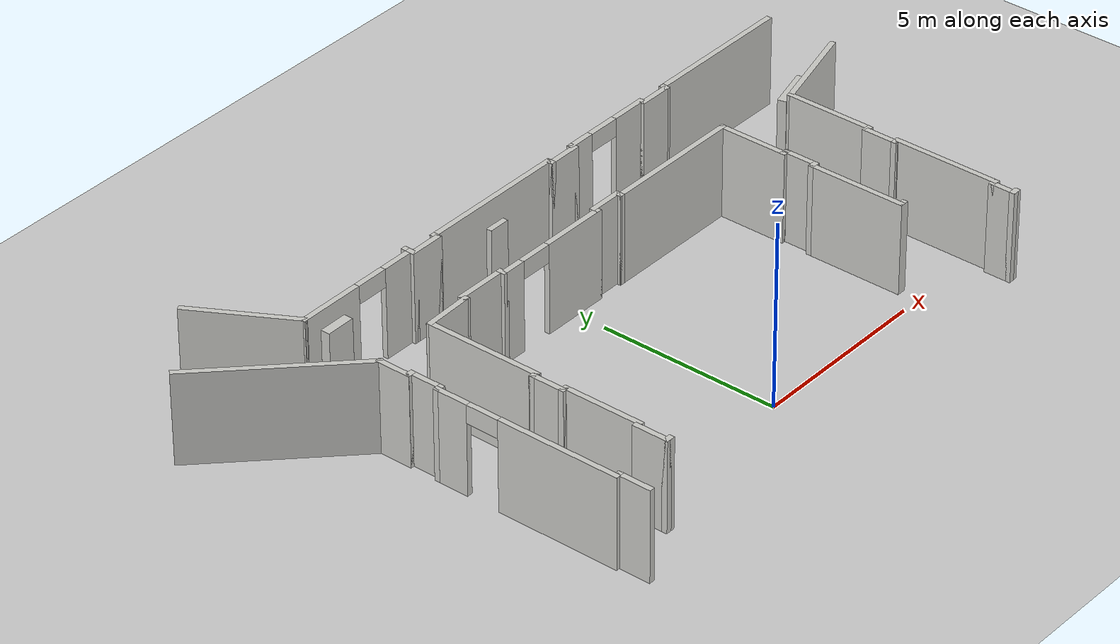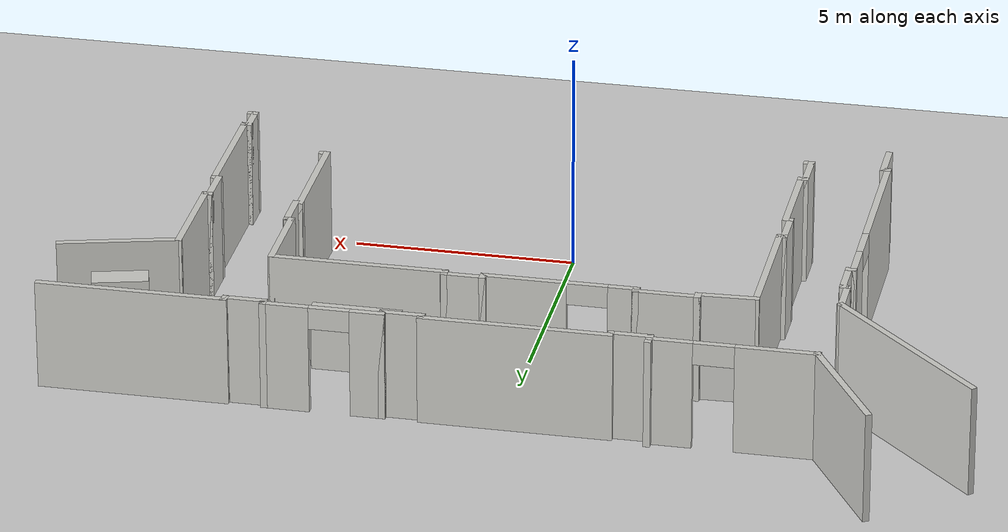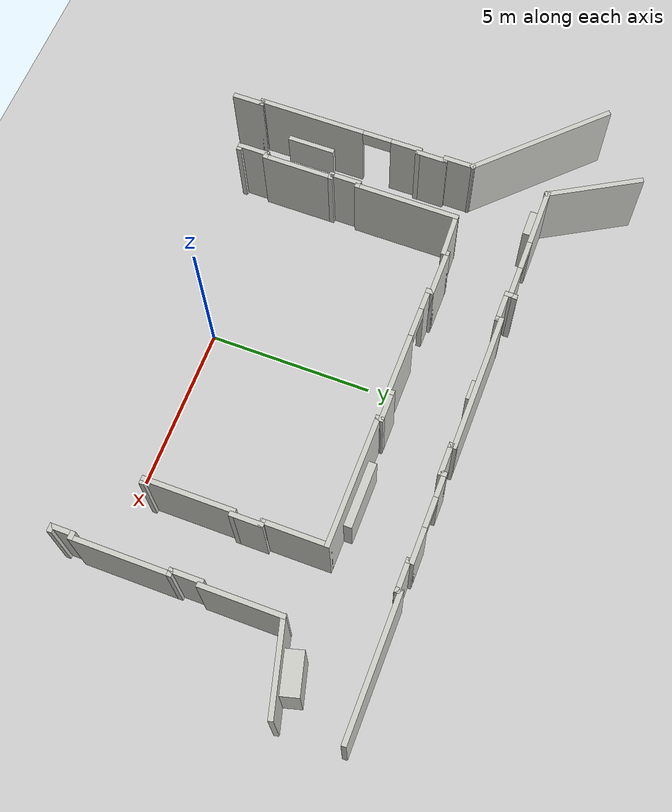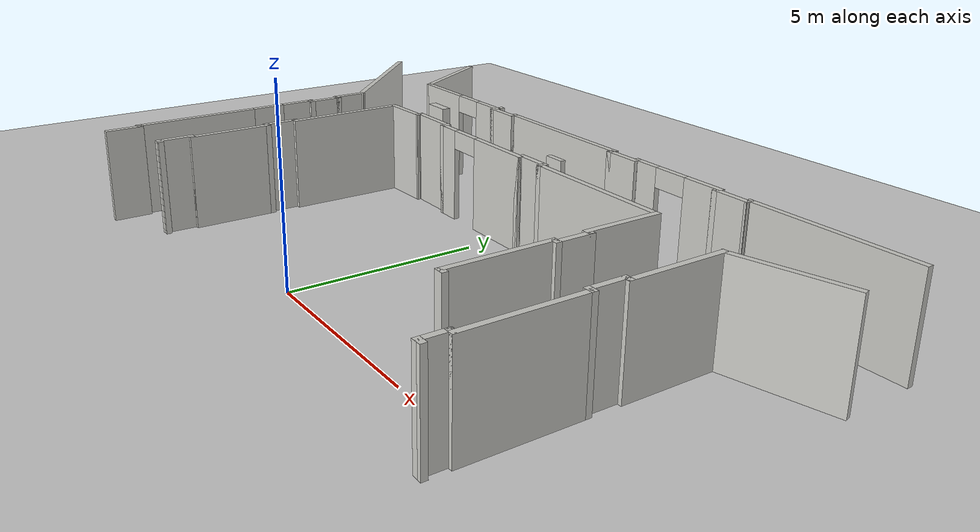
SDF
<sdf version="1.6">
 <world name="default">
  <model name="ground_plane">
   <static>1</static>
   <link name="link">
    <collision name="collision">
     <geometry><plane><normal>0 0 1</normal><size>100 100</size></plane></geometry>
     <surface><friction><ode><mu>100</mu><mu2>50</mu2></ode></friction></surface>
    </collision>
    <visual name="visual">
     <cast_shadows>0</cast_shadows>
     <geometry><plane><normal>0 0 1</normal><size>100 100</size></plane></geometry>
     <material>
      <script><uri>file://media/materials/scripts/gazebo.material</uri><name>Gazebo/Grey</name></script>
     </material>
    </visual>
   </link>
  </model>
  <model name="mcbryde5">
   <pose>0.000403 -0.034137 0 0 -0 0</pose>
   <link name="Wall_102">
    <collision name="Wall_102_Collision">
     <geometry><box><size>0.15 0.15 2.5</size></box></geometry>
     <pose>0 0 1.25 0 -0 0</pose>
    </collision>
    <visual name="Wall_102_Visual">
     <pose>0 0 1.25 0 -0 0</pose>
     <geometry><box><size>0.15 0.15 2.5</size></box></geometry>
     <material>
      <script><uri>file://media/materials/scripts/gazebo.material</uri><name>Gazebo/CeilingTiled</name></script>
      <ambient>1 1 1 1</ambient>
     </material>
    </visual>
    <pose>-6.94903 4.93922 0 0 -0 0</pose>
   </link>
   <link name="Wall_103">
    <collision name="Wall_103_Collision">
     <geometry><box><size>0.25 0.15 2.5</size></box></geometry>
     <pose>0 0 1.25 0 -0 0</pose>
    </collision>
    <visual name="Wall_103_Visual">
     <pose>0 0 1.25 0 -0 0</pose>
     <geometry><box><size>0.25 0.15 2.5</size></box></geometry>
     <material>
      <script><uri>file://media/materials/scripts/gazebo.material</uri><name>Gazebo/CeilingTiled</name></script>
      <ambient>1 1 1 1</ambient>
     </material>
    </visual>
    <pose>-6.89903 4.93922 0 0 -0 0</pose>
   </link>
   <link name="Wall_104">
    <collision name="Wall_104_Collision">
     <geometry><box><size>1 0.15 2.5</size></box></geometry>
     <pose>0 0 1.25 0 -0 0</pose>
    </collision>
    <visual name="Wall_104_Visual">
     <pose>0 0 1.25 0 -0 0</pose>
     <geometry><box><size>1 0.15 2.5</size></box></geometry>
     <material>
      <script><uri>file://media/materials/scripts/gazebo.material</uri><name>Gazebo/CeilingTiled</name></script>
      <ambient>1 1 1 1</ambient>
     </material>
    </visual>
    <pose>-6.84903 4.51422 0 0 0 -1.5708</pose>
   </link>
   <link name="Wall_105">
    <collision name="Wall_105_Collision">
     <geometry><box><size>0.25 0.15 2.5</size></box></geometry>
     <pose>0 0 1.25 0 -0 0</pose>
    </collision>
    <visual name="Wall_105_Visual">
     <pose>0 0 1.25 0 -0 0</pose>
     <geometry><box><size>0.25 0.15 2.5</size></box></geometry>
     <material>
      <script><uri>file://media/materials/scripts/gazebo.material</uri><name>Gazebo/CeilingTiled</name></script>
      <ambient>1 1 1 1</ambient>
     </material>
    </visual>
    <pose>-6.89903 4.08922 0 0 -0 3.14159</pose>
   </link>
   <link name="Wall_106">
    <pose>-6.94903 1.53922 0 0 0 -1.5708</pose>
    <visual name="Wall_106_Visual_0">
     <pose>-2.13764 0 1.25 0 -0 0</pose>
     <geometry><box><size>0.974722 0.15 2.5</size></box></geometry>
     <material>
      <script><uri>file://media/materials/scripts/gazebo.material</uri><name>Gazebo/CeilingTiled</name></script>
      <ambient>1 1 1 1</ambient>
     </material>
    </visual>
    <collision name="Wall_106_Collision_0">
     <geometry><box><size>0.974722 0.15 2.5</size></box></geometry>
     <pose>-2.13764 0 1.25 0 -0 0</pose>
    </collision>
    <visual name="Wall_106_Visual_1">
     <pose>0.937361 0 1.25 0 -0 0</pose>
     <geometry><box><size>3.37528 0.15 2.5</size></box></geometry>
     <material>
      <script><uri>file://media/materials/scripts/gazebo.material</uri><name>Gazebo/CeilingTiled</name></script>
      <ambient>1 1 1 1</ambient>
     </material>
    </visual>
    <collision name="Wall_106_Collision_1">
     <geometry><box><size>3.37528 0.15 2.5</size></box></geometry>
     <pose>0.937361 0 1.25 0 -0 0</pose>
    </collision>
    <visual name="Wall_106_Visual_2">
     <pose>-1.20028 0 2.25 0 -0 0</pose>
     <geometry><box><size>0.9 0.15 0.5</size></box></geometry>
     <material>
      <script><uri>file://media/materials/scripts/gazebo.material</uri><name>Gazebo/CeilingTiled</name></script>
      <ambient>1 1 1 1</ambient>
     </material>
    </visual>
    <collision name="Wall_106_Collision_2">
     <geometry><box><size>0.9 0.15 0.5</size></box></geometry>
     <pose>-1.20028 0 2.25 0 -0 0</pose>
    </collision>
    <visual name="Wall_106_Visual_3">
     <pose>0.937361 0.15 0.6 0 -0 0</pose>
     <geometry><box><size>1.5 0.15 1.2</size></box></geometry>
     <material>
      <script><uri>file://media/materials/scripts/gazebo.material</uri><name>Gazebo/CeilingTiled</name></script>
      <ambient>0.6 0.6 1 1</ambient>
     </material>
    </visual>
    <collision name="Wall_106_Collision_3">
     <geometry><box><size>1.5 0.15 1.2</size></box></geometry>
     <pose>0.937361 0.15 0.6 0 -0 0</pose>
    </collision>
   </link>
   <link name="Wall_107">
    <collision name="Wall_107_Collision">
     <geometry><box><size>0.25 0.15 2.5</size></box></geometry>
     <pose>0 0 1.25 0 -0 0</pose>
    </collision>
    <visual name="Wall_107_Visual">
     <pose>0 0 1.25 0 -0 0</pose>
     <geometry><box><size>0.25 0.15 2.5</size></box></geometry>
     <material>
      <script><uri>file://media/materials/scripts/gazebo.material</uri><name>Gazebo/CeilingTiled</name></script>
      <ambient>1 1 1 1</ambient>
     </material>
    </visual>
    <pose>-6.89903 -1.01078 0 0 -0 0</pose>
   </link>
   <link name="Wall_108">
    <collision name="Wall_108_Collision">
     <geometry><box><size>1 0.15 2.5</size></box></geometry>
     <pose>0 0 1.25 0 -0 0</pose>
    </collision>
    <visual name="Wall_108_Visual">
     <pose>0 0 1.25 0 -0 0</pose>
     <geometry><box><size>1 0.15 2.5</size></box></geometry>
     <material>
      <script><uri>file://media/materials/scripts/gazebo.material</uri><name>Gazebo/CeilingTiled</name></script>
      <ambient>1 1 1 1</ambient>
     </material>
    </visual>
    <pose>-6.84903 -1.43578 0 0 0 -1.5708</pose>
   </link>
   <link name="Wall_14">
    <collision name="Wall_14_Collision">
     <geometry><box><size>0.15 0.15 2.5</size></box></geometry>
     <pose>0 0 1.25 0 -0 0</pose>
    </collision>
    <visual name="Wall_14_Visual">
     <pose>0 0 1.25 0 -0 0</pose>
     <geometry><box><size>0.15 0.15 2.5</size></box></geometry>
     <material>
      <script><uri>file://media/materials/scripts/gazebo.material</uri><name>Gazebo/CeilingTiled</name></script>
      <ambient>1 1 1 1</ambient>
     </material>
    </visual>
    <pose>-3.20531 8.30498 0 0 -0 0</pose>
   </link>
   <link name="Wall_144">
    <collision name="Wall_144_Collision">
     <geometry><box><size>0.25 0.15 2.5</size></box></geometry>
     <pose>0 0 1.25 0 -0 0</pose>
    </collision>
    <visual name="Wall_144_Visual">
     <pose>0 0 1.25 0 -0 0</pose>
     <geometry><box><size>0.25 0.15 2.5</size></box></geometry>
     <material>
      <script><uri>file://media/materials/scripts/gazebo.material</uri><name>Gazebo/CeilingTiled</name></script>
      <ambient>1 1 1 1</ambient>
     </material>
    </visual>
    <pose>7.65453 -1.10972 0 0 -0 3.14159</pose>
   </link>
   <link name="Wall_145">
    <collision name="Wall_145_Collision">
     <geometry><box><size>0.75 0.15 2.5</size></box></geometry>
     <pose>0 0 1.25 0 -0 0</pose>
    </collision>
    <visual name="Wall_145_Visual">
     <pose>0 0 1.25 0 -0 0</pose>
     <geometry><box><size>0.75 0.15 2.5</size></box></geometry>
     <material>
      <script><uri>file://media/materials/scripts/gazebo.material</uri><name>Gazebo/CeilingTiled</name></script>
      <ambient>1 1 1 1</ambient>
     </material>
    </visual>
    <pose>7.60453 -0.809722 0 0 -0 1.5708</pose>
   </link>
   <link name="Wall_146">
    <collision name="Wall_146_Collision">
     <geometry><box><size>0.25 0.15 2.5</size></box></geometry>
     <pose>0 0 1.25 0 -0 0</pose>
    </collision>
    <visual name="Wall_146_Visual">
     <pose>0 0 1.25 0 -0 0</pose>
     <geometry><box><size>0.25 0.15 2.5</size></box></geometry>
     <material>
      <script><uri>file://media/materials/scripts/gazebo.material</uri><name>Gazebo/CeilingTiled</name></script>
      <ambient>1 1 1 1</ambient>
     </material>
    </visual>
    <pose>7.65453 -0.509722 0 0 -0 0</pose>
   </link>
   <link name="Wall_147">
    <collision name="Wall_147_Collision">
     <geometry><box><size>3 0.15 2.5</size></box></geometry>
     <pose>0 0 1.25 0 -0 0</pose>
    </collision>
    <visual name="Wall_147_Visual">
     <pose>0 0 1.25 0 -0 0</pose>
     <geometry><box><size>3 0.15 2.5</size></box></geometry>
     <material>
      <script><uri>file://media/materials/scripts/gazebo.material</uri><name>Gazebo/CeilingTiled</name></script>
      <ambient>1 1 1 1</ambient>
     </material>
    </visual>
    <pose>7.70453 0.915278 0 0 -0 1.5708</pose>
   </link>
   <link name="Wall_149">
    <collision name="Wall_149_Collision">
     <geometry><box><size>0.25 0.15 2.5</size></box></geometry>
     <pose>0 0 1.25 0 -0 0</pose>
    </collision>
    <visual name="Wall_149_Visual">
     <pose>0 0 1.25 0 -0 0</pose>
     <geometry><box><size>0.25 0.15 2.5</size></box></geometry>
     <material>
      <script><uri>file://media/materials/scripts/gazebo.material</uri><name>Gazebo/CeilingTiled</name></script>
      <ambient>1 1 1 1</ambient>
     </material>
    </visual>
    <pose>7.65453 2.34028 0 0 -0 3.14159</pose>
   </link>
   <link name="Wall_150">
    <collision name="Wall_150_Collision">
     <geometry><box><size>1 0.15 2.5</size></box></geometry>
     <pose>0 0 1.25 0 -0 0</pose>
    </collision>
    <visual name="Wall_150_Visual">
     <pose>0 0 1.25 0 -0 0</pose>
     <geometry><box><size>1 0.15 2.5</size></box></geometry>
     <material>
      <script><uri>file://media/materials/scripts/gazebo.material</uri><name>Gazebo/CeilingTiled</name></script>
      <ambient>1 1 1 1</ambient>
     </material>
    </visual>
    <pose>7.60453 2.76528 0 0 -0 1.5708</pose>
   </link>
   <link name="Wall_151">
    <collision name="Wall_151_Collision">
     <geometry><box><size>0.25 0.15 2.5</size></box></geometry>
     <pose>0 0 1.25 0 -0 0</pose>
    </collision>
    <visual name="Wall_151_Visual">
     <pose>0 0 1.25 0 -0 0</pose>
     <geometry><box><size>0.25 0.15 2.5</size></box></geometry>
     <material>
      <script><uri>file://media/materials/scripts/gazebo.material</uri><name>Gazebo/CeilingTiled</name></script>
      <ambient>1 1 1 1</ambient>
     </material>
    </visual>
    <pose>7.65453 3.19028 0 0 -0 0</pose>
   </link>
   <link name="Wall_152">
    <collision name="Wall_152_Collision">
     <geometry><box><size>2.5 0.15 2.5</size></box></geometry>
     <pose>0 0 1.25 0 -0 0</pose>
    </collision>
    <visual name="Wall_152_Visual">
     <pose>0 0 1.25 0 -0 0</pose>
     <geometry><box><size>2.5 0.15 2.5</size></box></geometry>
     <material>
      <script><uri>file://media/materials/scripts/gazebo.material</uri><name>Gazebo/CeilingTiled</name></script>
      <ambient>1 1 1 1</ambient>
     </material>
    </visual>
    <pose>7.70453 4.36528 0 0 -0 1.5708</pose>
   </link>
   <link name="Wall_153">
    <collision name="Wall_153_Collision_0">
     <geometry><box><size>2.75 0.15 2.5</size></box></geometry>
     <pose>0 0 1.25 0 -0 0</pose>
    </collision>
    <visual name="Wall_153_Visual_0">
     <pose>0 0 1.25 0 -0 0</pose>
     <geometry><box><size>2.75 0.15 2.5</size></box></geometry>
     <material>
      <script><uri>file://media/materials/scripts/gazebo.material</uri><name>Gazebo/CeilingTiled</name></script>
      <ambient>1 1 1 1</ambient>
     </material>
    </visual>
    <collision name="Wall_153_Collision_1">
     <geometry><box><size>1.25 0.55 1.8</size></box></geometry>
     <pose>0 0.35 0.9 0 -0 0</pose>
    </collision>
    <visual name="Wall_153_Visual_1">
     <pose>0 0.35 0.9 0 -0 0</pose>
     <geometry><box><size>1.25 0.55 1.8</size></box></geometry>
     <material>
      <script><uri>file://media/materials/scripts/gazebo.material</uri><name>Gazebo/CeilingTiled</name></script>
      <ambient>1 0.4 0.4 1</ambient>
     </material>
    </visual>
    <pose>8.96023 5.87674 0 0 -0 0.261799</pose>
   </link>
   <link name="Wall_19">
    <collision name="Wall_19_Collision">
     <geometry><box><size>3 0.15 2.5</size></box></geometry>
     <pose>0 0 1.25 0 -0 0</pose>
    </collision>
    <visual name="Wall_19_Visual">
     <pose>0 0 1.25 0 -0 0</pose>
     <geometry><box><size>3 0.15 2.5</size></box></geometry>
     <material>
      <script><uri>file://media/materials/scripts/gazebo.material</uri><name>Gazebo/CeilingTiled</name></script>
      <ambient>1 1 1 1</ambient>
     </material>
    </visual>
    <pose>-7.52502 9.40387 0 0 0 -1.0472</pose>
   </link>
   <link name="Wall_20">
    <pose>-5.01252 8.16978 0 0 -0 0</pose>
    <visual name="Wall_20_Visual_0">
     <pose>-0.956139 0 1.25 0 -0 0</pose>
     <geometry><box><size>1.83772 0.15 2.5</size></box></geometry>
     <material>
      <script><uri>file://media/materials/scripts/gazebo.material</uri><name>Gazebo/CeilingTiled</name></script>
      <ambient>1 1 1 1</ambient>
     </material>
    </visual>
    <collision name="Wall_20_Collision_0">
     <geometry><box><size>1.83772 0.15 2.5</size></box></geometry>
     <pose>-0.956139 0 1.25 0 -0 0</pose>
    </collision>
    <visual name="Wall_20_Visual_1">
     <pose>1.36886 0 1.25 0 -0 0</pose>
     <geometry><box><size>1.01228 0.15 2.5</size></box></geometry>
     <material>
      <script><uri>file://media/materials/scripts/gazebo.material</uri><name>Gazebo/CeilingTiled</name></script>
      <ambient>1 1 1 1</ambient>
     </material>
    </visual>
    <collision name="Wall_20_Collision_1">
     <geometry><box><size>1.01228 0.15 2.5</size></box></geometry>
     <pose>1.36886 0 1.25 0 -0 0</pose>
    </collision>
    <visual name="Wall_20_Visual_2">
     <pose>0.412722 0 2.25 0 -0 0</pose>
     <geometry><box><size>0.9 0.15 0.5</size></box></geometry>
     <material>
      <script><uri>file://media/materials/scripts/gazebo.material</uri><name>Gazebo/CeilingTiled</name></script>
      <ambient>1 1 1 1</ambient>
     </material>
    </visual>
    <collision name="Wall_20_Collision_2">
     <geometry><box><size>0.9 0.15 0.5</size></box></geometry>
     <pose>0.412722 0 2.25 0 -0 0</pose>
    </collision>
    <visual name="Wall_20_Visual_3">
     <pose>-0.956139 -0.2 1.0 0 -0 0</pose>
     <geometry><box><size>0.8 0.25 2.0</size></box></geometry>
     <material>
      <script><uri>file://media/materials/scripts/gazebo.material</uri><name>Gazebo/CeilingTiled</name></script>
      <ambient>1 1 0.2 1</ambient>
     </material>
    </visual>
    <collision name="Wall_20_Collision_3">
     <geometry><box><size>0.8 0.25 2.0</size></box></geometry>
     <pose>-0.956139 -0.2 1.0 0 -0 0</pose>
    </collision>
   </link>
   <link name="Wall_21">
    <collision name="Wall_21_Collision">
     <geometry><box><size>0.25 0.15 2.5</size></box></geometry>
     <pose>0 0 1.25 0 -0 0</pose>
    </collision>
    <visual name="Wall_21_Visual">
     <pose>0 0 1.25 0 -0 0</pose>
     <geometry><box><size>0.25 0.15 2.5</size></box></geometry>
     <material>
      <script><uri>file://media/materials/scripts/gazebo.material</uri><name>Gazebo/CeilingTiled</name></script>
      <ambient>1 1 1 1</ambient>
     </material>
    </visual>
    <pose>-3.21252 8.11978 0 0 0 -1.5708</pose>
   </link>
   <link name="Wall_22">
    <collision name="Wall_22_Collision">
     <geometry><box><size>1 0.15 2.5</size></box></geometry>
     <pose>0 0 1.25 0 -0 0</pose>
    </collision>
    <visual name="Wall_22_Visual">
     <pose>0 0 1.25 0 -0 0</pose>
     <geometry><box><size>1 0.15 2.5</size></box></geometry>
     <material>
      <script><uri>file://media/materials/scripts/gazebo.material</uri><name>Gazebo/CeilingTiled</name></script>
      <ambient>1 1 1 1</ambient>
     </material>
    </visual>
    <pose>-2.78752 8.06978 0 0 -0 0</pose>
   </link>
   <link name="Wall_23">
    <collision name="Wall_23_Collision">
     <geometry><box><size>0.25 0.15 2.5</size></box></geometry>
     <pose>0 0 1.25 0 -0 0</pose>
    </collision>
    <visual name="Wall_23_Visual">
     <pose>0 0 1.25 0 -0 0</pose>
     <geometry><box><size>0.25 0.15 2.5</size></box></geometry>
     <material>
      <script><uri>file://media/materials/scripts/gazebo.material</uri><name>Gazebo/CeilingTiled</name></script>
      <ambient>1 1 1 1</ambient>
     </material>
    </visual>
    <pose>-2.36252 8.11978 0 0 -0 1.5708</pose>
   </link>
   <link name="Wall_24">
    <collision name="Wall_24_Collision_0">
     <geometry><box><size>4.25 0.15 2.5</size></box></geometry>
     <pose>0 0 1.25 0 -0 0</pose>
    </collision>
    <visual name="Wall_24_Visual_0">
     <pose>0 0 1.25 0 -0 0</pose>
     <geometry><box><size>4.25 0.15 2.5</size></box></geometry>
     <material>
      <script><uri>file://media/materials/scripts/gazebo.material</uri><name>Gazebo/CeilingTiled</name></script>
      <ambient>1 1 1 1</ambient>
     </material>
    </visual>
    <collision name="Wall_24_Collision_1">
     <geometry><box><size>0.6 0.15 1.8</size></box></geometry>
     <pose>0 -0.15 0.9 0 -0 0</pose>
    </collision>
    <visual name="Wall_24_Visual_1">
     <pose>0 -0.15 0.9 0 -0 0</pose>
     <geometry><box><size>0.6 0.15 1.8</size></box></geometry>
     <material>
      <script><uri>file://media/materials/scripts/gazebo.material</uri><name>Gazebo/CeilingTiled</name></script>
      <ambient>0.5 1 0.8 1</ambient>
     </material>
    </visual>
    <pose>-0.312519 8.16978 0 0 -0 0</pose>
   </link>
   <link name="Wall_25">
    <collision name="Wall_25_Collision">
     <geometry><box><size>0.25 0.15 2.5</size></box></geometry>
     <pose>0 0 1.25 0 -0 0</pose>
    </collision>
    <visual name="Wall_25_Visual">
     <pose>0 0 1.25 0 -0 0</pose>
     <geometry><box><size>0.25 0.15 2.5</size></box></geometry>
     <material>
      <script><uri>file://media/materials/scripts/gazebo.material</uri><name>Gazebo/CeilingTiled</name></script>
      <ambient>1 1 1 1</ambient>
     </material>
    </visual>
    <pose>1.73748 8.11978 0 0 0 -1.5708</pose>
   </link>
   <link name="Wall_26">
    <collision name="Wall_26_Collision">
     <geometry><box><size>1 0.15 2.5</size></box></geometry>
     <pose>0 0 1.25 0 -0 0</pose>
    </collision>
    <visual name="Wall_26_Visual">
     <pose>0 0 1.25 0 -0 0</pose>
     <geometry><box><size>1 0.15 2.5</size></box></geometry>
     <material>
      <script><uri>file://media/materials/scripts/gazebo.material</uri><name>Gazebo/CeilingTiled</name></script>
      <ambient>1 1 1 1</ambient>
     </material>
    </visual>
    <pose>2.16248 8.06978 0 0 -0 0</pose>
   </link>
   <link name="Wall_27">
    <collision name="Wall_27_Collision">
     <geometry><box><size>0.25 0.15 2.5</size></box></geometry>
     <pose>0 0 1.25 0 -0 0</pose>
    </collision>
    <visual name="Wall_27_Visual">
     <pose>0 0 1.25 0 -0 0</pose>
     <geometry><box><size>0.25 0.15 2.5</size></box></geometry>
     <material>
      <script><uri>file://media/materials/scripts/gazebo.material</uri><name>Gazebo/CeilingTiled</name></script>
      <ambient>1 1 1 1</ambient>
     </material>
    </visual>
    <pose>2.58748 8.11978 0 0 -0 1.5708</pose>
   </link>
   <link name="Wall_28">
    <pose>3.88748 8.16978 0 0 -0 0</pose>
    <visual name="Wall_28_Visual_0">
     <pose>-0.988297 0 1.25 0 -0 0</pose>
     <geometry><box><size>0.773405 0.15 2.5</size></box></geometry>
     <material>
      <script><uri>file://media/materials/scripts/gazebo.material</uri><name>Gazebo/CeilingTiled</name></script>
      <ambient>1 1 1 1</ambient>
     </material>
    </visual>
    <collision name="Wall_28_Collision_0">
     <geometry><box><size>0.773405 0.15 2.5</size></box></geometry>
     <pose>-0.988297 0 1.25 0 -0 0</pose>
    </collision>
    <visual name="Wall_28_Visual_1">
     <pose>0.836703 0 1.25 0 -0 0</pose>
     <geometry><box><size>1.07659 0.15 2.5</size></box></geometry>
     <material>
      <script><uri>file://media/materials/scripts/gazebo.material</uri><name>Gazebo/CeilingTiled</name></script>
      <ambient>1 1 1 1</ambient>
     </material>
    </visual>
    <collision name="Wall_28_Collision_1">
     <geometry><box><size>1.07659 0.15 2.5</size></box></geometry>
     <pose>0.836703 0 1.25 0 -0 0</pose>
    </collision>
    <visual name="Wall_28_Visual_2">
     <pose>-0.151595 0 2.25 0 -0 0</pose>
     <geometry><box><size>0.9 0.15 0.5</size></box></geometry>
     <material>
      <script><uri>file://media/materials/scripts/gazebo.material</uri><name>Gazebo/CeilingTiled</name></script>
      <ambient>1 1 1 1</ambient>
     </material>
    </visual>
    <collision name="Wall_28_Collision_2">
     <geometry><box><size>0.9 0.15 0.5</size></box></geometry>
     <pose>-0.151595 0 2.25 0 -0 0</pose>
    </collision>
   </link>
   <link name="Wall_29">
    <collision name="Wall_29_Collision">
     <geometry><box><size>0.25 0.15 2.5</size></box></geometry>
     <pose>0 0 1.25 0 -0 0</pose>
    </collision>
    <visual name="Wall_29_Visual">
     <pose>0 0 1.25 0 -0 0</pose>
     <geometry><box><size>0.25 0.15 2.5</size></box></geometry>
     <material>
      <script><uri>file://media/materials/scripts/gazebo.material</uri><name>Gazebo/CeilingTiled</name></script>
      <ambient>1 1 1 1</ambient>
     </material>
    </visual>
    <pose>5.18748 8.11978 0 0 0 -1.5708</pose>
   </link>
   <link name="Wall_30">
    <collision name="Wall_30_Collision">
     <geometry><box><size>1 0.15 2.5</size></box></geometry>
     <pose>0 0 1.25 0 -0 0</pose>
    </collision>
    <visual name="Wall_30_Visual">
     <pose>0 0 1.25 0 -0 0</pose>
     <geometry><box><size>1 0.15 2.5</size></box></geometry>
     <material>
      <script><uri>file://media/materials/scripts/gazebo.material</uri><name>Gazebo/CeilingTiled</name></script>
      <ambient>1 1 1 1</ambient>
     </material>
    </visual>
    <pose>5.61248 8.06978 0 0 -0 0</pose>
   </link>
   <link name="Wall_31">
    <collision name="Wall_31_Collision">
     <geometry><box><size>0.227973 0.15 2.5</size></box></geometry>
     <pose>0 0 1.25 0 -0 0</pose>
    </collision>
    <visual name="Wall_31_Visual">
     <pose>0 0 1.25 0 -0 0</pose>
     <geometry><box><size>0.227973 0.15 2.5</size></box></geometry>
     <material>
      <script><uri>file://media/materials/scripts/gazebo.material</uri><name>Gazebo/CeilingTiled</name></script>
      <ambient>1 1 1 1</ambient>
     </material>
    </visual>
    <pose>6.0432 8.10835 0 0 -0 1.42361</pose>
   </link>
   <link name="Wall_32">
    <collision name="Wall_32_Collision">
     <geometry><box><size>4.25 0.15 2.5</size></box></geometry>
     <pose>0 0 1.25 0 -0 0</pose>
    </collision>
    <visual name="Wall_32_Visual">
     <pose>0 0 1.25 0 -0 0</pose>
     <geometry><box><size>4.25 0.15 2.5</size></box></geometry>
     <material>
      <script><uri>file://media/materials/scripts/gazebo.material</uri><name>Gazebo/CeilingTiled</name></script>
      <ambient>1 1 1 1</ambient>
     </material>
    </visual>
    <pose>8.09892 8.15835 0 0 -0 0</pose>
   </link>
   <link name="Wall_35">
    <collision name="Wall_35_Collision">
     <geometry><box><size>0.25 0.15 2.5</size></box></geometry>
     <pose>0 0 1.25 0 -0 0</pose>
    </collision>
    <visual name="Wall_35_Visual">
     <pose>0 0 1.25 0 -0 0</pose>
     <geometry><box><size>0.25 0.15 2.5</size></box></geometry>
     <material>
      <script><uri>file://media/materials/scripts/gazebo.material</uri><name>Gazebo/CeilingTiled</name></script>
      <ambient>1 1 1 1</ambient>
     </material>
    </visual>
    <pose>-3.86866 5.97671 0 0 -0 1.5708</pose>
   </link>
   <link name="Wall_36">
    <collision name="Wall_36_Collision">
     <geometry><box><size>1.5 0.15 2.5</size></box></geometry>
     <pose>0 0 1.25 0 -0 0</pose>
    </collision>
    <visual name="Wall_36_Visual">
     <pose>0 0 1.25 0 -0 0</pose>
     <geometry><box><size>1.5 0.15 2.5</size></box></geometry>
     <material>
      <script><uri>file://media/materials/scripts/gazebo.material</uri><name>Gazebo/CeilingTiled</name></script>
      <ambient>1 1 1 1</ambient>
     </material>
    </visual>
    <pose>-3.19366 6.02671 0 0 -0 0</pose>
   </link>
   <link name="Wall_37">
    <collision name="Wall_37_Collision">
     <geometry><box><size>0.25 0.15 2.5</size></box></geometry>
     <pose>0 0 1.25 0 -0 0</pose>
    </collision>
    <visual name="Wall_37_Visual">
     <pose>0 0 1.25 0 -0 0</pose>
     <geometry><box><size>0.25 0.15 2.5</size></box></geometry>
     <material>
      <script><uri>file://media/materials/scripts/gazebo.material</uri><name>Gazebo/CeilingTiled</name></script>
      <ambient>1 1 1 1</ambient>
     </material>
    </visual>
    <pose>-2.51866 5.97671 0 0 0 -1.5708</pose>
   </link>
   <link name="Wall_38">
    <pose>-0.843662 5.92671 0 0 -0 0</pose>
    <visual name="Wall_38_Visual_0">
     <pose>-1.40375 0 1.25 0 -0 0</pose>
     <geometry><box><size>0.692509 0.15 2.5</size></box></geometry>
     <material>
      <script><uri>file://media/materials/scripts/gazebo.material</uri><name>Gazebo/CeilingTiled</name></script>
      <ambient>1 1 1 1</ambient>
     </material>
    </visual>
    <collision name="Wall_38_Collision_0">
     <geometry><box><size>0.692509 0.15 2.5</size></box></geometry>
     <pose>-1.40375 0 1.25 0 -0 0</pose>
    </collision>
    <visual name="Wall_38_Visual_1">
     <pose>0.796255 0 1.25 0 -0 0</pose>
     <geometry><box><size>1.90749 0.15 2.5</size></box></geometry>
     <material>
      <script><uri>file://media/materials/scripts/gazebo.material</uri><name>Gazebo/CeilingTiled</name></script>
      <ambient>1 1 1 1</ambient>
     </material>
    </visual>
    <collision name="Wall_38_Collision_1">
     <geometry><box><size>1.90749 0.15 2.5</size></box></geometry>
     <pose>0.796255 0 1.25 0 -0 0</pose>
    </collision>
    <visual name="Wall_38_Visual_2">
     <pose>-0.607491 0 2.25 0 -0 0</pose>
     <geometry><box><size>0.9 0.15 0.5</size></box></geometry>
     <material>
      <script><uri>file://media/materials/scripts/gazebo.material</uri><name>Gazebo/CeilingTiled</name></script>
      <ambient>1 1 1 1</ambient>
     </material>
    </visual>
    <collision name="Wall_38_Collision_2">
     <geometry><box><size>0.9 0.15 0.5</size></box></geometry>
     <pose>-0.607491 0 2.25 0 -0 0</pose>
    </collision>
   </link>
   <link name="Wall_39">
    <collision name="Wall_39_Collision">
     <geometry><box><size>0.25 0.15 2.5</size></box></geometry>
     <pose>0 0 1.25 0 -0 0</pose>
    </collision>
    <visual name="Wall_39_Visual">
     <pose>0 0 1.25 0 -0 0</pose>
     <geometry><box><size>0.25 0.15 2.5</size></box></geometry>
     <material>
      <script><uri>file://media/materials/scripts/gazebo.material</uri><name>Gazebo/CeilingTiled</name></script>
      <ambient>1 1 1 1</ambient>
     </material>
    </visual>
    <pose>0.831338 5.97671 0 0 -0 1.5708</pose>
   </link>
   <link name="Wall_40">
    <collision name="Wall_40_Collision">
     <geometry><box><size>1 0.15 2.5</size></box></geometry>
     <pose>0 0 1.25 0 -0 0</pose>
    </collision>
    <visual name="Wall_40_Visual">
     <pose>0 0 1.25 0 -0 0</pose>
     <geometry><box><size>1 0.15 2.5</size></box></geometry>
     <material>
      <script><uri>file://media/materials/scripts/gazebo.material</uri><name>Gazebo/CeilingTiled</name></script>
      <ambient>1 1 1 1</ambient>
     </material>
    </visual>
    <pose>1.25634 6.02671 0 0 -0 0</pose>
   </link>
   <link name="Wall_41">
    <collision name="Wall_41_Collision">
     <geometry><box><size>0.25 0.15 2.5</size></box></geometry>
     <pose>0 0 1.25 0 -0 0</pose>
    </collision>
    <visual name="Wall_41_Visual">
     <pose>0 0 1.25 0 -0 0</pose>
     <geometry><box><size>0.25 0.15 2.5</size></box></geometry>
     <material>
      <script><uri>file://media/materials/scripts/gazebo.material</uri><name>Gazebo/CeilingTiled</name></script>
      <ambient>1 1 1 1</ambient>
     </material>
    </visual>
    <pose>1.68134 5.97671 0 0 0 -1.5708</pose>
   </link>
   <link name="Wall_42">
    <collision name="Wall_42_Collision_0">
     <geometry><box><size>4 0.15 2.5</size></box></geometry>
     <pose>0 0 1.25 0 -0 0</pose>
    </collision>
    <visual name="Wall_42_Visual_0">
     <pose>0 0 1.25 0 -0 0</pose>
     <geometry><box><size>4 0.15 2.5</size></box></geometry>
     <material>
      <script><uri>file://media/materials/scripts/gazebo.material</uri><name>Gazebo/CeilingTiled</name></script>
      <ambient>1 1 1 1</ambient>
     </material>
    </visual>
    <collision name="Wall_42_Collision_1">
     <geometry><box><size>2 0.25 1.5</size></box></geometry>
     <pose>0 0.2 0.75 0 -0 0</pose>
    </collision>
    <visual name="Wall_42_Visual_1">
     <pose>0 0.2 0.75 0 -0 0</pose>
     <geometry><box><size>2 0.25 1.5</size></box></geometry>
     <material>
      <script><uri>file://media/materials/scripts/gazebo.material</uri><name>Gazebo/CeilingTiled</name></script>
      <ambient>1 1 0.8 1</ambient>
     </material>
    </visual>
    <pose>3.60634 5.92671 0 0 -0 0</pose>
   </link>
   <link name="Wall_44">
    <collision name="Wall_44_Collision">
     <geometry><box><size>2 0.15 2.5</size></box></geometry>
     <pose>0 0.2 1.25 0 -0 0</pose>
    </collision>
    <visual name="Wall_44_Visual">
     <pose>0 0 1.25 0 -0 0</pose>
     <geometry><box><size>2 0.15 2.5</size></box></geometry>
     <material>
      <script><uri>file://media/materials/scripts/gazebo.material</uri><name>Gazebo/CeilingTiled</name></script>
      <ambient>1 1 1 1</ambient>
     </material>
    </visual>
    <pose>5.53134 5.00171 0 0 0 -1.5708</pose>
   </link>
   <link name="Wall_45">
    <collision name="Wall_45_Collision">
     <geometry><box><size>0.25 0.15 2.5</size></box></geometry>
     <pose>0 0 1.25 0 -0 0</pose>
    </collision>
    <visual name="Wall_45_Visual">
     <pose>0 0 1.25 0 -0 0</pose>
     <geometry><box><size>0.25 0.15 2.5</size></box></geometry>
     <material>
      <script><uri>file://media/materials/scripts/gazebo.material</uri><name>Gazebo/CeilingTiled</name></script>
      <ambient>1 1 1 1</ambient>
     </material>
    </visual>
    <pose>5.58134 4.07671 0 0 -0 0</pose>
   </link>
   <link name="Wall_46">
    <collision name="Wall_46_Collision">
     <geometry><box><size>1 0.15 2.5</size></box></geometry>
     <pose>0 0 1.25 0 -0 0</pose>
    </collision>
    <visual name="Wall_46_Visual">
     <pose>0 0 1.25 0 -0 0</pose>
     <geometry><box><size>1 0.15 2.5</size></box></geometry>
     <material>
      <script><uri>file://media/materials/scripts/gazebo.material</uri><name>Gazebo/CeilingTiled</name></script>
      <ambient>1 1 1 1</ambient>
     </material>
    </visual>
    <pose>5.63134 3.65171 0 0 0 -1.5708</pose>
   </link>
   <link name="Wall_47">
    <collision name="Wall_47_Collision">
     <geometry><box><size>0.25 0.15 2.5</size></box></geometry>
     <pose>0 0 1.25 0 -0 0</pose>
    </collision>
    <visual name="Wall_47_Visual">
     <pose>0 0 1.25 0 -0 0</pose>
     <geometry><box><size>0.25 0.15 2.5</size></box></geometry>
     <material>
      <script><uri>file://media/materials/scripts/gazebo.material</uri><name>Gazebo/CeilingTiled</name></script>
      <ambient>1 1 1 1</ambient>
     </material>
    </visual>
    <pose>5.58134 3.22671 0 0 -0 3.14159</pose>
   </link>
   <link name="Wall_48">
    <collision name="Wall_48_Collision">
     <geometry><box><size>2.75 0.15 2.5</size></box></geometry>
     <pose>0 0 1.25 0 -0 0</pose>
    </collision>
    <visual name="Wall_48_Visual">
     <pose>0 0 1.25 0 -0 0</pose>
     <geometry><box><size>2.75 0.15 2.5</size></box></geometry>
     <material>
      <script><uri>file://media/materials/scripts/gazebo.material</uri><name>Gazebo/CeilingTiled</name></script>
      <ambient>1 1 1 1</ambient>
     </material>
    </visual>
    <pose>5.53134 1.92671 0 0 0 -1.5708</pose>
   </link>
   <link name="Wall_52">
    <collision name="Wall_52_Collision">
     <geometry><box><size>0.25 0.15 2.5</size></box></geometry>
     <pose>0 0 1.25 0 -0 0</pose>
    </collision>
    <visual name="Wall_52_Visual">
     <pose>0 0 1.25 0 -0 0</pose>
     <geometry><box><size>0.25 0.15 2.5</size></box></geometry>
     <material>
      <script><uri>file://media/materials/scripts/gazebo.material</uri><name>Gazebo/CeilingTiled</name></script>
      <ambient>1 1 1 1</ambient>
     </material>
    </visual>
    <pose>5.58134 0.626707 0 0 -0 0</pose>
   </link>
   <link name="Wall_82">
    <collision name="Wall_82_Collision">
     <geometry><box><size>0.25 0.15 2.5</size></box></geometry>
     <pose>0 0 1.25 0 -0 0</pose>
    </collision>
    <visual name="Wall_82_Visual">
     <pose>0 0 1.25 0 -0 0</pose>
     <geometry><box><size>0.25 0.15 2.5</size></box></geometry>
     <material>
      <script><uri>file://media/materials/scripts/gazebo.material</uri><name>Gazebo/CeilingTiled</name></script>
      <ambient>1 1 1 1</ambient>
     </material>
    </visual>
    <pose>-5.16866 -1.02329 0 0 -0 3.14159</pose>
   </link>
   <link name="Wall_83">
    <collision name="Wall_83_Collision">
     <geometry><box><size>1 0.15 2.5</size></box></geometry>
     <pose>0 0 1.25 0 -0 0</pose>
    </collision>
    <visual name="Wall_83_Visual">
     <pose>0 0 1.25 0 -0 0</pose>
     <geometry><box><size>1 0.15 2.5</size></box></geometry>
     <material>
      <script><uri>file://media/materials/scripts/gazebo.material</uri><name>Gazebo/CeilingTiled</name></script>
      <ambient>1 1 1 1</ambient>
     </material>
    </visual>
    <pose>-5.21866 -0.598293 0 0 -0 1.5708</pose>
   </link>
   <link name="Wall_84">
    <collision name="Wall_84_Collision">
     <geometry><box><size>0.25 0.15 2.5</size></box></geometry>
     <pose>0 0 1.25 0 -0 0</pose>
    </collision>
    <visual name="Wall_84_Visual">
     <pose>0 0 1.25 0 -0 0</pose>
     <geometry><box><size>0.25 0.15 2.5</size></box></geometry>
     <material>
      <script><uri>file://media/materials/scripts/gazebo.material</uri><name>Gazebo/CeilingTiled</name></script>
      <ambient>1 1 1 1</ambient>
     </material>
    </visual>
    <pose>-5.16866 -0.173293 0 0 -0 0</pose>
   </link>
   <link name="Wall_85">
    <collision name="Wall_85_Collision">
     <geometry><box><size>2.25 0.15 2.5</size></box></geometry>
     <pose>0 0 1.25 0 -0 0</pose>
    </collision>
    <visual name="Wall_85_Visual">
     <pose>0 0 1.25 0 -0 0</pose>
     <geometry><box><size>2.25 0.15 2.5</size></box></geometry>
     <material>
      <script><uri>file://media/materials/scripts/gazebo.material</uri><name>Gazebo/CeilingTiled</name></script>
      <ambient>1 1 1 1</ambient>
     </material>
    </visual>
    <pose>-5.11866 0.876707 0 0 -0 1.5708</pose>
   </link>
   <link name="Wall_87">
    <collision name="Wall_87_Collision">
     <geometry><box><size>0.25 0.15 2.5</size></box></geometry>
     <pose>0 0 1.25 0 -0 0</pose>
    </collision>
    <visual name="Wall_87_Visual">
     <pose>0 0 1.25 0 -0 0</pose>
     <geometry><box><size>0.25 0.15 2.5</size></box></geometry>
     <material>
      <script><uri>file://media/materials/scripts/gazebo.material</uri><name>Gazebo/CeilingTiled</name></script>
      <ambient>1 1 1 1</ambient>
     </material>
    </visual>
    <pose>-5.16866 1.92671 0 0 -0 3.14159</pose>
   </link>
   <link name="Wall_88">
    <collision name="Wall_88_Collision">
     <geometry><box><size>1 0.15 2.5</size></box></geometry>
     <pose>0 0 1.25 0 -0 0</pose>
    </collision>
    <visual name="Wall_88_Visual">
     <pose>0 0 1.25 0 -0 0</pose>
     <geometry><box><size>1 0.15 2.5</size></box></geometry>
     <material>
      <script><uri>file://media/materials/scripts/gazebo.material</uri><name>Gazebo/CeilingTiled</name></script>
      <ambient>1 1 1 1</ambient>
     </material>
    </visual>
    <pose>-5.21866 2.35171 0 0 -0 1.5708</pose>
   </link>
   <link name="Wall_92">
    <collision name="Wall_92_Collision">
     <geometry><box><size>0.25 0.15 2.5</size></box></geometry>
     <pose>0 0 1.25 0 -0 0</pose>
    </collision>
    <visual name="Wall_92_Visual">
     <pose>0 0 1.25 0 -0 0</pose>
     <geometry><box><size>0.25 0.15 2.5</size></box></geometry>
     <material>
      <script><uri>file://media/materials/scripts/gazebo.material</uri><name>Gazebo/CeilingTiled</name></script>
      <ambient>1 1 1 1</ambient>
     </material>
    </visual>
    <pose>-5.16866 2.77671 0 0 -0 0</pose>
   </link>
   <link name="Wall_93">
    <collision name="Wall_93_Collision">
     <geometry><box><size>3.25 0.15 2.5</size></box></geometry>
     <pose>0 0 1.25 0 -0 0</pose>
    </collision>
    <visual name="Wall_93_Visual">
     <pose>0 0 1.25 0 -0 0</pose>
     <geometry><box><size>3.25 0.15 2.5</size></box></geometry>
     <material>
      <script><uri>file://media/materials/scripts/gazebo.material</uri><name>Gazebo/CeilingTiled</name></script>
      <ambient>1 1 1 1</ambient>
     </material>
    </visual>
    <pose>-5.11866 4.32671 0 0 -0 1.5708</pose>
   </link>
   <link name="Wall_94">
    <collision name="Wall_94_Collision">
     <geometry><box><size>1.401 0.15 2.5</size></box></geometry>
     <pose>0 0 1.25 0 -0 0</pose>
    </collision>
    <visual name="Wall_94_Visual">
     <pose>0 0 1.25 0 -0 0</pose>
     <geometry><box><size>1.401 0.15 2.5</size></box></geometry>
     <material>
      <script><uri>file://media/materials/scripts/gazebo.material</uri><name>Gazebo/CeilingTiled</name></script>
      <ambient>1 1 1 1</ambient>
     </material>
    </visual>
    <pose>-4.49366 5.90171 0 0 -0 0.039979</pose>
   </link>
   <link name="Wall_96">
    <collision name="Wall_96_Collision">
     <geometry><box><size>4.75 0.15 2.5</size></box></geometry>
     <pose>0 0 1.25 0 -0 0</pose>
    </collision>
    <visual name="Wall_96_Visual">
     <pose>0 0 1.25 0 -0 0</pose>
     <geometry><box><size>4.75 0.15 2.5</size></box></geometry>
     <material>
      <script><uri>file://media/materials/scripts/gazebo.material</uri><name>Gazebo/CeilingTiled</name></script>
      <ambient>1 1 1 1</ambient>
     </material>
    </visual>
    <pose>-8.57538 7.41557 0 0 0 -0.785398</pose>
   </link>
   <link name="Wall_97">
    <collision name="Wall_97_Collision">
     <geometry><box><size>1 0.15 2.5</size></box></geometry>
     <pose>0 0 1.25 0 -0 0</pose>
    </collision>
    <visual name="Wall_97_Visual">
     <pose>0 0 1.25 0 -0 0</pose>
     <geometry><box><size>1 0.15 2.5</size></box></geometry>
     <material>
      <script><uri>file://media/materials/scripts/gazebo.material</uri><name>Gazebo/CeilingTiled</name></script>
      <ambient>1 1 1 1</ambient>
     </material>
    </visual>
    <pose>-6.94903 5.36422 0 0 0 -1.5708</pose>
   </link>
   <static>1</static>
  </model>
 </world>
</sdf>
